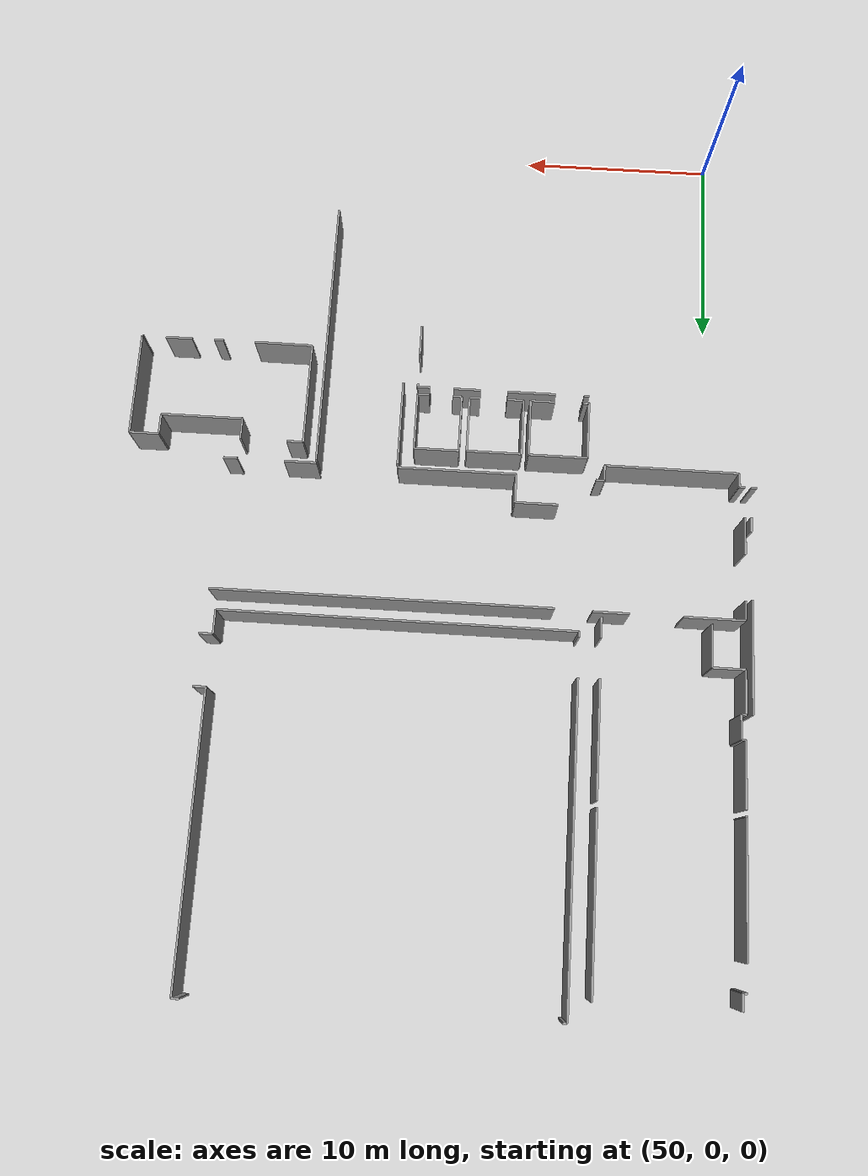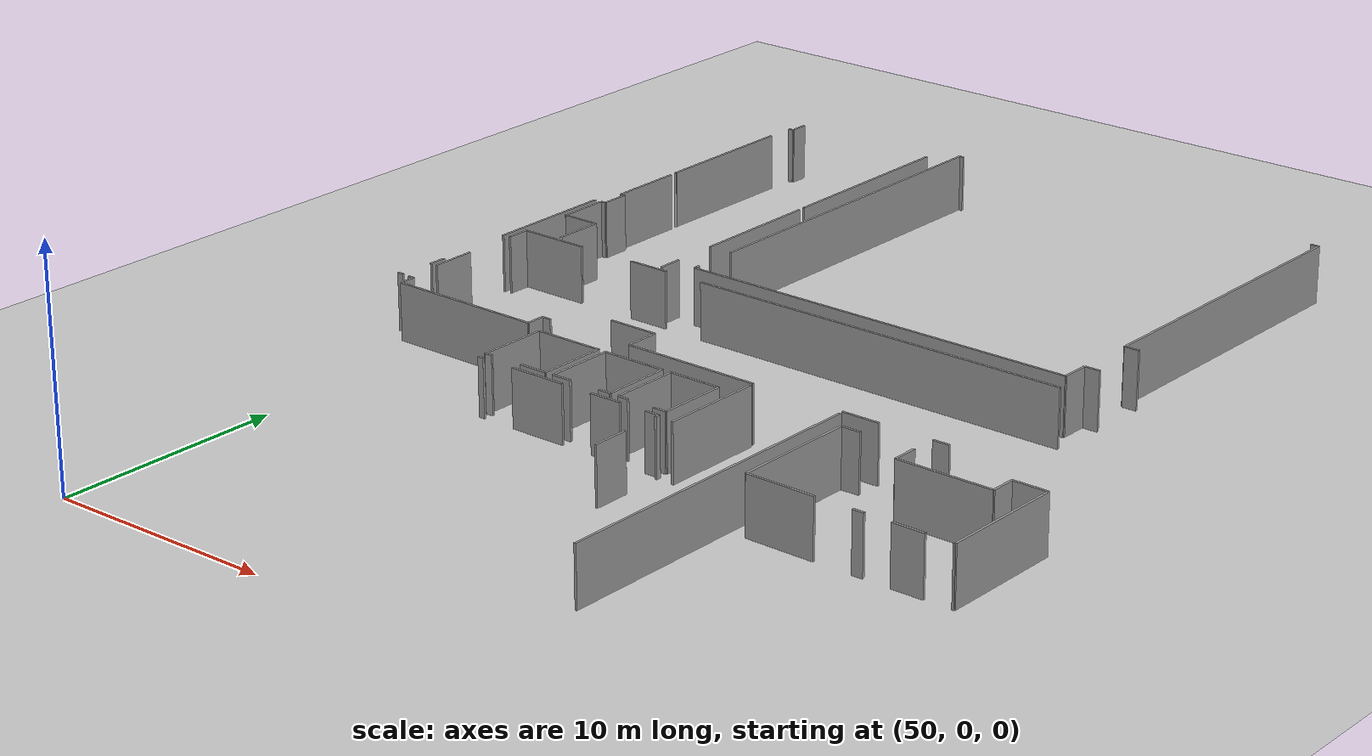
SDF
<sdf version="1.6">
 <world name="default">
  <model name="ground_plane">
   <static>1</static>
   <link name="link">
    <collision name="collision">
     <geometry><plane><normal>0 0 1</normal><size>100 100</size></plane></geometry>
     <surface><friction><ode><mu>100</mu><mu2>50</mu2></ode></friction></surface>
    </collision>
    <visual name="visual">
     <cast_shadows>0</cast_shadows>
     <geometry><plane><normal>0 0 1</normal><size>100 100</size></plane></geometry>
     <material>
      <script><uri>file://media/materials/scripts/gazebo.material</uri><name>Gazebo/Grey</name></script>
     </material>
    </visual>
   </link>
  </model>
  <model name="0510035737_A_40_1_105">
   <static>1</static>
   <link name="Wall_375">
    <collision name="Wall_375_Collision">
     <geometry><box><size>5.75361443869 0.1 2.5</size></box></geometry>
     <pose>2.87680721934 0 1.25 0 0 0</pose>
    </collision>
    <visual name="Wall_375_Visual">
     <pose>2.87680721934 0 1.25 0 0 0</pose>
     <geometry><box><size>5.75361443869 0.1 2.5</size></box></geometry>
     <material>
      <script><uri>file://media/materials/scripts/gazebo.material</uri><name>Gazebo/Grey</name></script>
      <ambient>1 1 1 1</ambient>
     </material>
    </visual>
    <pose>128.141082266 -14.6069714976 0 0 0 -1.57079632679</pose>
   </link>
   <link name="Wall_387">
    <collision name="Wall_387_Collision">
     <geometry><box><size>0.746592100664 0.1 2.5</size></box></geometry>
     <pose>0.373296050332 0 1.25 0 0 0</pose>
    </collision>
    <visual name="Wall_387_Visual">
     <pose>0.373296050332 0 1.25 0 0 0</pose>
     <geometry><box><size>0.746592100664 0.1 2.5</size></box></geometry>
     <material>
      <script><uri>file://media/materials/scripts/gazebo.material</uri><name>Gazebo/Grey</name></script>
      <ambient>1 1 1 1</ambient>
     </material>
    </visual>
    <pose>128.163452067 -23.9267897429 0 0 0 -1.57079632679</pose>
   </link>
   <link name="Wall_388">
    <collision name="Wall_388_Collision">
     <geometry><box><size>0.28623176893 0.1 2.5</size></box></geometry>
     <pose>0.143115884465 0 1.25 0 0 0</pose>
    </collision>
    <visual name="Wall_388_Visual">
     <pose>0.143115884465 0 1.25 0 0 0</pose>
     <geometry><box><size>0.28623176893 0.1 2.5</size></box></geometry>
     <material>
      <script><uri>file://media/materials/scripts/gazebo.material</uri><name>Gazebo/Grey</name></script>
      <ambient>1 1 1 1</ambient>
     </material>
    </visual>
    <pose>128.163452067 -26.2687553621 0 0 0 3.14159265359</pose>
   </link>
   <link name="Wall_400">
    <collision name="Wall_400_Collision">
     <geometry><box><size>0.71634202917 0.1 2.5</size></box></geometry>
     <pose>0.358171014585 0 1.25 0 0 0</pose>
    </collision>
    <visual name="Wall_400_Visual">
     <pose>0.358171014585 0 1.25 0 0 0</pose>
     <geometry><box><size>0.71634202917 0.1 2.5</size></box></geometry>
     <material>
      <script><uri>file://media/materials/scripts/gazebo.material</uri><name>Gazebo/Grey</name></script>
      <ambient>1 1 1 1</ambient>
     </material>
    </visual>
    <pose>128.758031203 -27.0168726764 0 0 0 1.57079632679</pose>
   </link>
   <link name="Wall_401">
    <collision name="Wall_401_Collision">
     <geometry><box><size>0.281656127864 0.1 2.5</size></box></geometry>
     <pose>0.140828063932 0 1.25 0 0 0</pose>
    </collision>
    <visual name="Wall_401_Visual">
     <pose>0.140828063932 0 1.25 0 0 0</pose>
     <geometry><box><size>0.281656127864 0.1 2.5</size></box></geometry>
     <material>
      <script><uri>file://media/materials/scripts/gazebo.material</uri><name>Gazebo/Grey</name></script>
      <ambient>1 1 1 1</ambient>
     </material>
    </visual>
    <pose>128.758031203 -26.3005306473 0 0 0 3.14159265359</pose>
   </link>
   <link name="Wall_402">
    <collision name="Wall_402_Collision">
     <geometry><box><size>1.9530361285 0.1 2.5</size></box></geometry>
     <pose>0.97651806425 0 1.25 0 0 0</pose>
    </collision>
    <visual name="Wall_402_Visual">
     <pose>0.97651806425 0 1.25 0 0 0</pose>
     <geometry><box><size>1.9530361285 0.1 2.5</size></box></geometry>
     <material>
      <script><uri>file://media/materials/scripts/gazebo.material</uri><name>Gazebo/Grey</name></script>
      <ambient>1 1 1 1</ambient>
     </material>
    </visual>
    <pose>128.476375075 -24.6817705189 0 0 0 1.57079632679</pose>
   </link>
   <link name="Wall_403">
    <collision name="Wall_403_Collision">
     <geometry><box><size>1.01121667567 0.1 2.5</size></box></geometry>
     <pose>0.505608337835 0 1.25 0 0 0</pose>
    </collision>
    <visual name="Wall_403_Visual">
     <pose>0.505608337835 0 1.25 0 0 0</pose>
     <geometry><box><size>1.01121667567 0.1 2.5</size></box></geometry>
     <material>
      <script><uri>file://media/materials/scripts/gazebo.material</uri><name>Gazebo/Grey</name></script>
      <ambient>1 1 1 1</ambient>
     </material>
    </visual>
    <pose>128.476375075 -20.3183883575 0 0 0 1.57079632679</pose>
   </link>
   <link name="Wall_404">
    <collision name="Wall_404_Collision">
     <geometry><box><size>3.09415017 0.1 2.5</size></box></geometry>
     <pose>1.547075085 0 1.25 0 0 0</pose>
    </collision>
    <visual name="Wall_404_Visual">
     <pose>1.547075085 0 1.25 0 0 0</pose>
     <geometry><box><size>3.09415017 0.1 2.5</size></box></geometry>
     <material>
      <script><uri>file://media/materials/scripts/gazebo.material</uri><name>Gazebo/Grey</name></script>
      <ambient>1 1 1 1</ambient>
     </material>
    </visual>
    <pose>128.476375075 -19.3071716819 0 0 0 0.0</pose>
   </link>
   <link name="Wall_405">
    <collision name="Wall_405_Collision">
     <geometry><box><size>1.87194560071 0.1 2.5</size></box></geometry>
     <pose>0.935972800356 0 1.25 0 0 0</pose>
    </collision>
    <visual name="Wall_405_Visual">
     <pose>0.935972800356 0 1.25 0 0 0</pose>
     <geometry><box><size>1.87194560071 0.1 2.5</size></box></geometry>
     <material>
      <script><uri>file://media/materials/scripts/gazebo.material</uri><name>Gazebo/Grey</name></script>
      <ambient>1 1 1 1</ambient>
     </material>
    </visual>
    <pose>134.251342506 -19.3071716819 0 0 0 0.0</pose>
   </link>
   <link name="Wall_406">
    <collision name="Wall_406_Collision">
     <geometry><box><size>0.432652283054 0.1 2.5</size></box></geometry>
     <pose>0.216326141527 0 1.25 0 0 0</pose>
    </collision>
    <visual name="Wall_406_Visual">
     <pose>0.216326141527 0 1.25 0 0 0</pose>
     <geometry><box><size>0.432652283054 0.1 2.5</size></box></geometry>
     <material>
      <script><uri>file://media/materials/scripts/gazebo.material</uri><name>Gazebo/Grey</name></script>
      <ambient>1 1 1 1</ambient>
     </material>
    </visual>
    <pose>136.123288107 -26.2204569286 0 0 0 3.14159265359</pose>
   </link>
   <link name="Wall_407">
    <collision name="Wall_407_Collision">
     <geometry><box><size>0.821327571415 0.1 2.5</size></box></geometry>
     <pose>0.410663785707 0 1.25 0 0 0</pose>
    </collision>
    <visual name="Wall_407_Visual">
     <pose>0.410663785707 0 1.25 0 0 0</pose>
     <geometry><box><size>0.821327571415 0.1 2.5</size></box></geometry>
     <material>
      <script><uri>file://media/materials/scripts/gazebo.material</uri><name>Gazebo/Grey</name></script>
      <ambient>1 1 1 1</ambient>
     </material>
    </visual>
    <pose>135.690635823 -26.2204569286 0 0 0 -1.57079632679</pose>
   </link>
   <link name="Wall_408">
    <collision name="Wall_408_Collision">
     <geometry><box><size>6.93264937942 0.1 2.5</size></box></geometry>
     <pose>3.46632468971 0 1.25 0 0 0</pose>
    </collision>
    <visual name="Wall_408_Visual">
     <pose>3.46632468971 0 1.25 0 0 0</pose>
     <geometry><box><size>6.93264937942 0.1 2.5</size></box></geometry>
     <material>
      <script><uri>file://media/materials/scripts/gazebo.material</uri><name>Gazebo/Grey</name></script>
      <ambient>1 1 1 1</ambient>
     </material>
    </visual>
    <pose>135.690635823 -27.0417845 0 0 0 3.1379992399</pose>
   </link>
   <link name="Wall_409">
    <collision name="Wall_409_Collision">
     <geometry><box><size>2.17597152934 0.1 2.5</size></box></geometry>
     <pose>1.08798576467 0 1.25 0 0 0</pose>
    </collision>
    <visual name="Wall_409_Visual">
     <pose>1.08798576467 0 1.25 0 0 0</pose>
     <geometry><box><size>2.17597152934 0.1 2.5</size></box></geometry>
     <material>
      <script><uri>file://media/materials/scripts/gazebo.material</uri><name>Gazebo/Grey</name></script>
      <ambient>1 1 1 1</ambient>
     </material>
    </visual>
    <pose>130.152330717 -19.0138222491 0 0 0 1.57079632679</pose>
   </link>
   <link name="Wall_410">
    <collision name="Wall_410_Collision">
     <geometry><box><size>1.67061739379 0.1 2.5</size></box></geometry>
     <pose>0.835308696896 0 1.25 0 0 0</pose>
    </collision>
    <visual name="Wall_410_Visual">
     <pose>0.835308696896 0 1.25 0 0 0</pose>
     <geometry><box><size>1.67061739379 0.1 2.5</size></box></geometry>
     <material>
      <script><uri>file://media/materials/scripts/gazebo.material</uri><name>Gazebo/Grey</name></script>
      <ambient>1 1 1 1</ambient>
     </material>
    </visual>
    <pose>130.152330717 -16.8378507197 0 0 0 3.14159265359</pose>
   </link>
   <link name="Wall_411">
    <collision name="Wall_411_Collision">
     <geometry><box><size>2.23087922214 0.1 2.5</size></box></geometry>
     <pose>1.11543961107 0 1.25 0 0 0</pose>
    </collision>
    <visual name="Wall_411_Visual">
     <pose>1.11543961107 0 1.25 0 0 0</pose>
     <geometry><box><size>2.23087922214 0.1 2.5</size></box></geometry>
     <material>
      <script><uri>file://media/materials/scripts/gazebo.material</uri><name>Gazebo/Grey</name></script>
      <ambient>1 1 1 1</ambient>
     </material>
    </visual>
    <pose>128.481713323 -16.8378507197 0 0 0 1.57079632679</pose>
   </link>
   <link name="Wall_412">
    <collision name="Wall_412_Collision">
     <geometry><box><size>0.241746369674 0.1 2.5</size></box></geometry>
     <pose>0.120873184837 0 1.25 0 0 0</pose>
    </collision>
    <visual name="Wall_412_Visual">
     <pose>0.120873184837 0 1.25 0 0 0</pose>
     <geometry><box><size>0.241746369674 0.1 2.5</size></box></geometry>
     <material>
      <script><uri>file://media/materials/scripts/gazebo.material</uri><name>Gazebo/Grey</name></script>
      <ambient>1 1 1 1</ambient>
     </material>
    </visual>
    <pose>128.481713323 -14.6069714976 0 0 0 0.0</pose>
   </link>
   <link name="Wall_413">
    <collision name="Wall_413_Collision">
     <geometry><box><size>1.21991674875 0.1 2.5</size></box></geometry>
     <pose>0.609958374376 0 1.25 0 0 0</pose>
    </collision>
    <visual name="Wall_413_Visual">
     <pose>0.609958374376 0 1.25 0 0 0</pose>
     <geometry><box><size>1.21991674875 0.1 2.5</size></box></geometry>
     <material>
      <script><uri>file://media/materials/scripts/gazebo.material</uri><name>Gazebo/Grey</name></script>
      <ambient>1 1 1 1</ambient>
     </material>
    </visual>
    <pose>128.723459693 -14.6069714976 0 0 0 1.57079632679</pose>
   </link>
   <link name="Wall_414">
    <collision name="Wall_414_Collision">
     <geometry><box><size>0.208700073083 0.1 2.5</size></box></geometry>
     <pose>0.104350036542 0 1.25 0 0 0</pose>
    </collision>
    <visual name="Wall_414_Visual">
     <pose>0.104350036542 0 1.25 0 0 0</pose>
     <geometry><box><size>0.208700073083 0.1 2.5</size></box></geometry>
     <material>
      <script><uri>file://media/materials/scripts/gazebo.material</uri><name>Gazebo/Grey</name></script>
      <ambient>1 1 1 1</ambient>
     </material>
    </visual>
    <pose>128.723459693 -13.3870547488 0 0 0 3.14159265359</pose>
   </link>
   <link name="Wall_415">
    <collision name="Wall_415_Collision">
     <geometry><box><size>3.3300498872 0.1 2.5</size></box></geometry>
     <pose>1.6650249436 0 1.25 0 0 0</pose>
    </collision>
    <visual name="Wall_415_Visual">
     <pose>1.6650249436 0 1.25 0 0 0</pose>
     <geometry><box><size>3.3300498872 0.1 2.5</size></box></geometry>
     <material>
      <script><uri>file://media/materials/scripts/gazebo.material</uri><name>Gazebo/Grey</name></script>
      <ambient>1 1 1 1</ambient>
     </material>
    </visual>
    <pose>128.51475962 -13.3870547488 0 0 0 1.57079632679</pose>
   </link>
   <link name="Wall_416">
    <collision name="Wall_416_Collision">
     <geometry><box><size>5.91427028058 0.1 2.5</size></box></geometry>
     <pose>2.95713514029 0 1.25 0 0 0</pose>
    </collision>
    <visual name="Wall_416_Visual">
     <pose>2.95713514029 0 1.25 0 0 0</pose>
     <geometry><box><size>5.91427028058 0.1 2.5</size></box></geometry>
     <material>
      <script><uri>file://media/materials/scripts/gazebo.material</uri><name>Gazebo/Grey</name></script>
      <ambient>1 1 1 1</ambient>
     </material>
    </visual>
    <pose>135.665215595 -10.0570048616 0 0 0 -1.57079632679</pose>
   </link>
   <link name="Wall_417">
    <collision name="Wall_417_Collision">
     <geometry><box><size>1.06612436847 0.1 2.5</size></box></geometry>
     <pose>0.533062184233 0 1.25 0 0 0</pose>
    </collision>
    <visual name="Wall_417_Visual">
     <pose>0.533062184233 0 1.25 0 0 0</pose>
     <geometry><box><size>1.06612436847 0.1 2.5</size></box></geometry>
     <material>
      <script><uri>file://media/materials/scripts/gazebo.material</uri><name>Gazebo/Grey</name></script>
      <ambient>1 1 1 1</ambient>
     </material>
    </visual>
    <pose>135.665215595 -17.9807441772 0 0 0 -1.57079632679</pose>
   </link>
   <link name="Wall_418">
    <collision name="Wall_418_Collision">
     <geometry><box><size>0.0424791712169 0.1 2.5</size></box></geometry>
     <pose>0.0212395856084 0 1.25 0 0 0</pose>
    </collision>
    <visual name="Wall_418_Visual">
     <pose>0.0212395856084 0 1.25 0 0 0</pose>
     <geometry><box><size>0.0424791712169 0.1 2.5</size></box></geometry>
     <material>
      <script><uri>file://media/materials/scripts/gazebo.material</uri><name>Gazebo/Grey</name></script>
      <ambient>1 1 1 1</ambient>
     </material>
    </visual>
    <pose>130.179021957 -19.0468685456 0 0 0 2.2502101322</pose>
   </link>
   <link name="Wall_419">
    <collision name="Wall_419_Collision">
     <geometry><box><size>6.6476438626 0.1 2.5</size></box></geometry>
     <pose>3.3238219313 0 1.25 0 0 0</pose>
    </collision>
    <visual name="Wall_419_Visual">
     <pose>3.3238219313 0 1.25 0 0 0</pose>
     <geometry><box><size>6.6476438626 0.1 2.5</size></box></geometry>
     <material>
      <script><uri>file://media/materials/scripts/gazebo.material</uri><name>Gazebo/Grey</name></script>
      <ambient>1 1 1 1</ambient>
     </material>
    </visual>
    <pose>128.499253281 -9.72730450256 0 0 0 1.57079632679</pose>
   </link>
   <link name="Wall_420">
    <collision name="Wall_420_Collision">
     <geometry><box><size>0.228019446475 0.1 2.5</size></box></geometry>
     <pose>0.114009723237 0 1.25 0 0 0</pose>
    </collision>
    <visual name="Wall_420_Visual">
     <pose>0.114009723237 0 1.25 0 0 0</pose>
     <geometry><box><size>0.228019446475 0.1 2.5</size></box></geometry>
     <material>
      <script><uri>file://media/materials/scripts/gazebo.material</uri><name>Gazebo/Grey</name></script>
      <ambient>1 1 1 1</ambient>
     </material>
    </visual>
    <pose>128.499253281 -1.77509453147 0 0 0 0.0</pose>
   </link>
   <link name="Wall_421">
    <collision name="Wall_421_Collision">
     <geometry><box><size>0.802770804868 0.1 2.5</size></box></geometry>
     <pose>0.401385402434 0 1.25 0 0 0</pose>
    </collision>
    <visual name="Wall_421_Visual">
     <pose>0.401385402434 0 1.25 0 0 0</pose>
     <geometry><box><size>0.802770804868 0.1 2.5</size></box></geometry>
     <material>
      <script><uri>file://media/materials/scripts/gazebo.material</uri><name>Gazebo/Grey</name></script>
      <ambient>1 1 1 1</ambient>
     </material>
    </visual>
    <pose>128.727272727 -1.77509453147 0 0 0 1.57079632679</pose>
   </link>
   <link name="Wall_422">
    <collision name="Wall_422_Collision">
     <geometry><box><size>8.80124559118 0.1 2.5</size></box></geometry>
     <pose>4.40062279559 0 1.25 0 0 0</pose>
    </collision>
    <visual name="Wall_422_Visual">
     <pose>4.40062279559 0 1.25 0 0 0</pose>
     <geometry><box><size>8.80124559118 0.1 2.5</size></box></geometry>
     <material>
      <script><uri>file://media/materials/scripts/gazebo.material</uri><name>Gazebo/Grey</name></script>
      <ambient>1 1 1 1</ambient>
     </material>
    </visual>
    <pose>135.658097931 -0.972323726605 0 0 0 -1.57079632679</pose>
   </link>
   <link name="Wall_423">
    <collision name="Wall_423_Collision">
     <geometry><box><size>0.0531598906707 0.1 2.5</size></box></geometry>
     <pose>0.0265799453354 0 1.25 0 0 0</pose>
    </collision>
    <visual name="Wall_423_Visual">
     <pose>0.0265799453354 0 1.25 0 0 0</pose>
     <geometry><box><size>0.0531598906707 0.1 2.5</size></box></geometry>
     <material>
      <script><uri>file://media/materials/scripts/gazebo.material</uri><name>Gazebo/Grey</name></script>
      <ambient>1 1 1 1</ambient>
     </material>
    </visual>
    <pose>128.525436116 -9.77356931778 0 0 0 2.08579062623</pose>
   </link>
   <link name="Wall_424">
    <collision name="Wall_424_Collision">
     <geometry><box><size>0.285214959804 0.1 2.5</size></box></geometry>
     <pose>0.142607479902 0 1.25 0 0 0</pose>
    </collision>
    <visual name="Wall_424_Visual">
     <pose>0.142607479902 0 1.25 0 0 0</pose>
     <geometry><box><size>0.285214959804 0.1 2.5</size></box></geometry>
     <material>
      <script><uri>file://media/materials/scripts/gazebo.material</uri><name>Gazebo/Grey</name></script>
      <ambient>1 1 1 1</ambient>
     </material>
    </visual>
    <pose>136.752184551 -18.2583330685 0 0 0 1.57079632679</pose>
   </link>
   <link name="Wall_425">
    <collision name="Wall_425_Collision">
     <geometry><box><size>15.9567856122 0.1 2.5</size></box></geometry>
     <pose>7.97839280608 0 1.25 0 0 0</pose>
    </collision>
    <visual name="Wall_425_Visual">
     <pose>7.97839280608 0 1.25 0 0 0</pose>
     <geometry><box><size>15.9567856122 0.1 2.5</size></box></geometry>
     <material>
      <script><uri>file://media/materials/scripts/gazebo.material</uri><name>Gazebo/Grey</name></script>
      <ambient>1 1 1 1</ambient>
     </material>
    </visual>
    <pose>136.752184551 -15.9567856122 0 0 0 1.57079632679</pose>
   </link>
   <link name="Wall_426">
    <collision name="Wall_426_Collision">
     <geometry><box><size>0.207429061676 0.1 2.5</size></box></geometry>
     <pose>0.103714530838 0 1.25 0 0 0</pose>
    </collision>
    <visual name="Wall_426_Visual">
     <pose>0.103714530838 0 1.25 0 0 0</pose>
     <geometry><box><size>0.207429061676 0.1 2.5</size></box></geometry>
     <material>
      <script><uri>file://media/materials/scripts/gazebo.material</uri><name>Gazebo/Grey</name></script>
      <ambient>1 1 1 1</ambient>
     </material>
    </visual>
    <pose>136.752184551 -0.0 0 0 0 0.0</pose>
   </link>
   <link name="Wall_427">
    <collision name="Wall_427_Collision">
     <geometry><box><size>0.366559689873 0.1 2.5</size></box></geometry>
     <pose>0.183279844937 0 1.25 0 0 0</pose>
    </collision>
    <visual name="Wall_427_Visual">
     <pose>0.183279844937 0 1.25 0 0 0</pose>
     <geometry><box><size>0.366559689873 0.1 2.5</size></box></geometry>
     <material>
      <script><uri>file://media/materials/scripts/gazebo.material</uri><name>Gazebo/Grey</name></script>
      <ambient>1 1 1 1</ambient>
     </material>
    </visual>
    <pose>154.610149026 -0.0 0 0 0 0.0</pose>
   </link>
   <link name="Wall_428">
    <collision name="Wall_428_Collision">
     <geometry><box><size>14.3908995583 0.1 2.5</size></box></geometry>
     <pose>7.19544977916 0 1.25 0 0 0</pose>
    </collision>
    <visual name="Wall_428_Visual">
     <pose>7.19544977916 0 1.25 0 0 0</pose>
     <geometry><box><size>14.3908995583 0.1 2.5</size></box></geometry>
     <material>
      <script><uri>file://media/materials/scripts/gazebo.material</uri><name>Gazebo/Grey</name></script>
      <ambient>1 1 1 1</ambient>
     </material>
    </visual>
    <pose>154.976708716 -0.0 0 0 0 -1.57079632679</pose>
   </link>
   <link name="Wall_429">
    <collision name="Wall_429_Collision">
     <geometry><box><size>0.644402783515 0.1 2.5</size></box></geometry>
     <pose>0.322201391757 0 1.25 0 0 0</pose>
    </collision>
    <visual name="Wall_429_Visual">
     <pose>0.322201391757 0 1.25 0 0 0</pose>
     <geometry><box><size>0.644402783515 0.1 2.5</size></box></geometry>
     <material>
      <script><uri>file://media/materials/scripts/gazebo.material</uri><name>Gazebo/Grey</name></script>
      <ambient>1 1 1 1</ambient>
     </material>
    </visual>
    <pose>154.976708716 -14.3908995583 0 0 0 0.0</pose>
   </link>
   <link name="Wall_430">
    <collision name="Wall_430_Collision">
     <geometry><box><size>0.7076991516 0.1 2.5</size></box></geometry>
     <pose>0.3538495758 0 1.25 0 0 0</pose>
    </collision>
    <visual name="Wall_430_Visual">
     <pose>0.3538495758 0 1.25 0 0 0</pose>
     <geometry><box><size>0.7076991516 0.1 2.5</size></box></geometry>
     <material>
      <script><uri>file://media/materials/scripts/gazebo.material</uri><name>Gazebo/Grey</name></script>
      <ambient>1 1 1 1</ambient>
     </material>
    </visual>
    <pose>155.621111499 -17.0450255791 0 0 0 3.14159265359</pose>
   </link>
   <link name="Wall_431">
    <collision name="Wall_431_Collision">
     <geometry><box><size>1.25118362937 0.1 2.5</size></box></geometry>
     <pose>0.625591814687 0 1.25 0 0 0</pose>
    </collision>
    <visual name="Wall_431_Visual">
     <pose>0.625591814687 0 1.25 0 0 0</pose>
     <geometry><box><size>1.25118362937 0.1 2.5</size></box></geometry>
     <material>
      <script><uri>file://media/materials/scripts/gazebo.material</uri><name>Gazebo/Grey</name></script>
      <ambient>1 1 1 1</ambient>
     </material>
    </visual>
    <pose>154.913412348 -17.0450255791 0 0 0 -1.57079632679</pose>
   </link>
   <link name="Wall_432">
    <collision name="Wall_432_Collision">
     <geometry><box><size>18.1612672933 0.1 2.5</size></box></geometry>
     <pose>9.08063364663 0 1.25 0 0 0</pose>
    </collision>
    <visual name="Wall_432_Visual">
     <pose>9.08063364663 0 1.25 0 0 0</pose>
     <geometry><box><size>18.1612672933 0.1 2.5</size></box></geometry>
     <material>
      <script><uri>file://media/materials/scripts/gazebo.material</uri><name>Gazebo/Grey</name></script>
      <ambient>1 1 1 1</ambient>
     </material>
    </visual>
    <pose>154.913412348 -18.2962092085 0 0 0 3.13950710709</pose>
   </link>
   <link name="Wall_433">
    <collision name="Wall_433_Collision">
     <geometry><box><size>1.51657081122 0.1 2.5</size></box></geometry>
     <pose>0.758285405612 0 1.25 0 0 0</pose>
    </collision>
    <visual name="Wall_433_Visual">
     <pose>0.758285405612 0 1.25 0 0 0</pose>
     <geometry><box><size>1.51657081122 0.1 2.5</size></box></geometry>
     <material>
      <script><uri>file://media/materials/scripts/gazebo.material</uri><name>Gazebo/Grey</name></script>
      <ambient>1 1 1 1</ambient>
     </material>
    </visual>
    <pose>140.240348257 -26.2962092085 0 0 0 1.57079632679</pose>
   </link>
   <link name="Wall_434">
    <collision name="Wall_434_Collision">
     <geometry><box><size>2.22426996282 0.1 2.5</size></box></geometry>
     <pose>1.11213498141 0 1.25 0 0 0</pose>
    </collision>
    <visual name="Wall_434_Visual">
     <pose>1.11213498141 0 1.25 0 0 0</pose>
     <geometry><box><size>2.22426996282 0.1 2.5</size></box></geometry>
     <material>
      <script><uri>file://media/materials/scripts/gazebo.material</uri><name>Gazebo/Grey</name></script>
      <ambient>1 1 1 1</ambient>
     </material>
    </visual>
    <pose>140.240348257 -24.7796383973 0 0 0 3.14159265359</pose>
   </link>
   <link name="Wall_435">
    <collision name="Wall_435_Collision">
     <geometry><box><size>17.3795557815 0.1 2.5</size></box></geometry>
     <pose>8.68977789076 0 1.25 0 0 0</pose>
    </collision>
    <visual name="Wall_435_Visual">
     <pose>8.68977789076 0 1.25 0 0 0</pose>
     <geometry><box><size>17.3795557815 0.1 2.5</size></box></geometry>
     <material>
      <script><uri>file://media/materials/scripts/gazebo.material</uri><name>Gazebo/Grey</name></script>
      <ambient>1 1 1 1</ambient>
     </material>
    </visual>
    <pose>138.016078294 -19.3549617108 0 0 0 0.0</pose>
   </link>
   <link name="Wall_436">
    <collision name="Wall_436_Collision">
     <geometry><box><size>0.735915604843 0.1 2.5</size></box></geometry>
     <pose>0.367957802421 0 1.25 0 0 0</pose>
    </collision>
    <visual name="Wall_436_Visual">
     <pose>0.367957802421 0 1.25 0 0 0</pose>
     <geometry><box><size>0.735915604843 0.1 2.5</size></box></geometry>
     <material>
      <script><uri>file://media/materials/scripts/gazebo.material</uri><name>Gazebo/Grey</name></script>
      <ambient>1 1 1 1</ambient>
     </material>
    </visual>
    <pose>155.395634076 -26.3000222427 0 0 0 3.14159265359</pose>
   </link>
   <link name="Wall_437">
    <collision name="Wall_437_Collision">
     <geometry><box><size>1.69146198087 0.1 2.5</size></box></geometry>
     <pose>0.845730990436 0 1.25 0 0 0</pose>
    </collision>
    <visual name="Wall_437_Visual">
     <pose>0.845730990436 0 1.25 0 0 0</pose>
     <geometry><box><size>1.69146198087 0.1 2.5</size></box></geometry>
     <material>
      <script><uri>file://media/materials/scripts/gazebo.material</uri><name>Gazebo/Grey</name></script>
      <ambient>1 1 1 1</ambient>
     </material>
    </visual>
    <pose>152.240475358 -26.3000222427 0 0 0 3.14159265359</pose>
   </link>
   <link name="Wall_438">
    <collision name="Wall_438_Collision">
     <geometry><box><size>6.11839590075 0.1 2.5</size></box></geometry>
     <pose>3.05919795037 0 1.25 0 0 0</pose>
    </collision>
    <visual name="Wall_438_Visual">
     <pose>3.05919795037 0 1.25 0 0 0</pose>
     <geometry><box><size>6.11839590075 0.1 2.5</size></box></geometry>
     <material>
      <script><uri>file://media/materials/scripts/gazebo.material</uri><name>Gazebo/Grey</name></script>
      <ambient>1 1 1 1</ambient>
     </material>
    </visual>
    <pose>146.35874297 -26.3000222427 0 0 0 3.14096944539</pose>
   </link>
   <link name="Wall_447">
    <collision name="Wall_447_Collision">
     <geometry><box><size>4.49963458422 0.1 2.5</size></box></geometry>
     <pose>2.24981729211 0 1.25 0 0 0</pose>
    </collision>
    <visual name="Wall_447_Visual">
     <pose>2.24981729211 0 1.25 0 0 0</pose>
     <geometry><box><size>4.49963458422 0.1 2.5</size></box></geometry>
     <material>
      <script><uri>file://media/materials/scripts/gazebo.material</uri><name>Gazebo/Grey</name></script>
      <ambient>1 1 1 1</ambient>
     </material>
    </visual>
    <pose>146.378062343 -30.983953481 0 0 0 1.57079632679</pose>
   </link>
   <link name="Wall_448">
    <collision name="Wall_448_Collision">
     <geometry><box><size>14.4745321089 0.1 2.5</size></box></geometry>
     <pose>7.23726605446 0 1.25 0 0 0</pose>
    </collision>
    <visual name="Wall_448_Visual">
     <pose>7.23726605446 0 1.25 0 0 0</pose>
     <geometry><box><size>14.4745321089 0.1 2.5</size></box></geometry>
     <material>
      <script><uri>file://media/materials/scripts/gazebo.material</uri><name>Gazebo/Grey</name></script>
      <ambient>1 1 1 1</ambient>
     </material>
    </visual>
    <pose>150.591210956 -26.4843188968 0 0 0 -1.57079632679</pose>
   </link>
   <link name="Wall_458">
    <collision name="Wall_458_Collision">
     <geometry><box><size>0.263861968161 0.1 2.5</size></box></geometry>
     <pose>0.131930984081 0 1.25 0 0 0</pose>
    </collision>
    <visual name="Wall_458_Visual">
     <pose>0.131930984081 0 1.25 0 0 0</pose>
     <geometry><box><size>0.263861968161 0.1 2.5</size></box></geometry>
     <material>
      <script><uri>file://media/materials/scripts/gazebo.material</uri><name>Gazebo/Grey</name></script>
      <ambient>1 1 1 1</ambient>
     </material>
    </visual>
    <pose>136.603222014 -30.8169425821 0 0 0 0.0</pose>
   </link>
   <link name="Wall_459">
    <collision name="Wall_459_Collision">
     <geometry><box><size>2.52346604811 0.1 2.5</size></box></geometry>
     <pose>1.26173302405 0 1.25 0 0 0</pose>
    </collision>
    <visual name="Wall_459_Visual">
     <pose>1.26173302405 0 1.25 0 0 0</pose>
     <geometry><box><size>2.52346604811 0.1 2.5</size></box></geometry>
     <material>
      <script><uri>file://media/materials/scripts/gazebo.material</uri><name>Gazebo/Grey</name></script>
      <ambient>1 1 1 1</ambient>
     </material>
    </visual>
    <pose>138.350608497 -30.8169425821 0 0 0 0.0</pose>
   </link>
   <link name="Wall_460">
    <collision name="Wall_460_Collision">
     <geometry><box><size>1.42404118077 0.1 2.5</size></box></geometry>
     <pose>0.712020590385 0 1.25 0 0 0</pose>
    </collision>
    <visual name="Wall_460_Visual">
     <pose>0.712020590385 0 1.25 0 0 0</pose>
     <geometry><box><size>1.42404118077 0.1 2.5</size></box></geometry>
     <material>
      <script><uri>file://media/materials/scripts/gazebo.material</uri><name>Gazebo/Grey</name></script>
      <ambient>1 1 1 1</ambient>
     </material>
    </visual>
    <pose>142.297353119 -30.8169425821 0 0 0 0.0</pose>
   </link>
   <link name="Wall_461">
    <collision name="Wall_461_Collision">
     <geometry><box><size>0.656604493025 0.1 2.5</size></box></geometry>
     <pose>0.328302246513 0 1.25 0 0 0</pose>
    </collision>
    <visual name="Wall_461_Visual">
     <pose>0.328302246513 0 1.25 0 0 0</pose>
     <geometry><box><size>0.656604493025 0.1 2.5</size></box></geometry>
     <material>
      <script><uri>file://media/materials/scripts/gazebo.material</uri><name>Gazebo/Grey</name></script>
      <ambient>1 1 1 1</ambient>
     </material>
    </visual>
    <pose>144.954021162 -30.8169425821 0 0 0 0.0</pose>
   </link>
   <link name="Wall_462">
    <collision name="Wall_462_Collision">
     <geometry><box><size>0.197006768136 0.1 2.5</size></box></geometry>
     <pose>0.0985033840679 0 1.25 0 0 0</pose>
    </collision>
    <visual name="Wall_462_Visual">
     <pose>0.0985033840679 0 1.25 0 0 0</pose>
     <geometry><box><size>0.197006768136 0.1 2.5</size></box></geometry>
     <material>
      <script><uri>file://media/materials/scripts/gazebo.material</uri><name>Gazebo/Grey</name></script>
      <ambient>1 1 1 1</ambient>
     </material>
    </visual>
    <pose>145.610625655 -30.8169425821 0 0 0 -1.57079632679</pose>
   </link>
   <link name="Wall_463">
    <collision name="Wall_463_Collision">
     <geometry><box><size>1.60452480061 0.1 2.5</size></box></geometry>
     <pose>0.802262400305 0 1.25 0 0 0</pose>
    </collision>
    <visual name="Wall_463_Visual">
     <pose>0.802262400305 0 1.25 0 0 0</pose>
     <geometry><box><size>1.60452480061 0.1 2.5</size></box></geometry>
     <material>
      <script><uri>file://media/materials/scripts/gazebo.material</uri><name>Gazebo/Grey</name></script>
      <ambient>1 1 1 1</ambient>
     </material>
    </visual>
    <pose>145.610625655 -32.6962600489 0 0 0 -1.57079632679</pose>
   </link>
   <link name="Wall_465">
    <collision name="Wall_465_Collision">
     <geometry><box><size>3.03339582473 0.1 2.5</size></box></geometry>
     <pose>1.51669791236 0 1.25 0 0 0</pose>
    </collision>
    <visual name="Wall_465_Visual">
     <pose>1.51669791236 0 1.25 0 0 0</pose>
     <geometry><box><size>3.03339582473 0.1 2.5</size></box></geometry>
     <material>
      <script><uri>file://media/materials/scripts/gazebo.material</uri><name>Gazebo/Grey</name></script>
      <ambient>1 1 1 1</ambient>
     </material>
    </visual>
    <pose>136.600425789 -30.4290299005 0 0 0 1.57079632679</pose>
   </link>
   <link name="Wall_466">
    <collision name="Wall_466_Collision">
     <geometry><box><size>3.04585173652 0.1 2.5</size></box></geometry>
     <pose>1.52292586826 0 1.25 0 0 0</pose>
    </collision>
    <visual name="Wall_466_Visual">
     <pose>1.52292586826 0 1.25 0 0 0</pose>
     <geometry><box><size>3.04585173652 0.1 2.5</size></box></geometry>
     <material>
      <script><uri>file://media/materials/scripts/gazebo.material</uri><name>Gazebo/Grey</name></script>
      <ambient>1 1 1 1</ambient>
     </material>
    </visual>
    <pose>136.600425789 -27.3956340758 0 0 0 0.0</pose>
   </link>
   <link name="Wall_467">
    <collision name="Wall_467_Collision">
     <geometry><box><size>2.99551968479 0.1 2.5</size></box></geometry>
     <pose>1.49775984239 0 1.25 0 0 0</pose>
    </collision>
    <visual name="Wall_467_Visual">
     <pose>1.49775984239 0 1.25 0 0 0</pose>
     <geometry><box><size>2.99551968479 0.1 2.5</size></box></geometry>
     <material>
      <script><uri>file://media/materials/scripts/gazebo.material</uri><name>Gazebo/Grey</name></script>
      <ambient>1 1 1 1</ambient>
     </material>
    </visual>
    <pose>139.646277525 -27.3956340758 0 0 0 -1.57079632679</pose>
   </link>
   <link name="Wall_468">
    <collision name="Wall_468_Collision">
     <geometry><box><size>1.26363954116 0.1 2.5</size></box></geometry>
     <pose>0.631819770582 0 1.25 0 0 0</pose>
    </collision>
    <visual name="Wall_468_Visual">
     <pose>0.631819770582 0 1.25 0 0 0</pose>
     <geometry><box><size>1.26363954116 0.1 2.5</size></box></geometry>
     <material>
      <script><uri>file://media/materials/scripts/gazebo.material</uri><name>Gazebo/Grey</name></script>
      <ambient>1 1 1 1</ambient>
     </material>
    </visual>
    <pose>139.646277525 -30.3911537606 0 0 0 3.14159265359</pose>
   </link>
   <link name="Wall_469">
    <collision name="Wall_469_Collision">
     <geometry><box><size>0.305871687794 0.1 2.5</size></box></geometry>
     <pose>0.152935843897 0 1.25 0 0 0</pose>
    </collision>
    <visual name="Wall_469_Visual">
     <pose>0.152935843897 0 1.25 0 0 0</pose>
     <geometry><box><size>0.305871687794 0.1 2.5</size></box></geometry>
     <material>
      <script><uri>file://media/materials/scripts/gazebo.material</uri><name>Gazebo/Grey</name></script>
      <ambient>1 1 1 1</ambient>
     </material>
    </visual>
    <pose>136.903943313 -30.3911537606 0 0 0 -3.01744382335</pose>
   </link>
   <link name="Wall_470">
    <collision name="Wall_470_Collision">
     <geometry><box><size>2.97492929999 0.1 2.5</size></box></geometry>
     <pose>1.48746465 0 1.25 0 0 0</pose>
    </collision>
    <visual name="Wall_470_Visual">
     <pose>1.48746465 0 1.25 0 0 0</pose>
     <geometry><box><size>2.97492929999 0.1 2.5</size></box></geometry>
     <material>
      <script><uri>file://media/materials/scripts/gazebo.material</uri><name>Gazebo/Grey</name></script>
      <ambient>1 1 1 1</ambient>
     </material>
    </visual>
    <pose>140.017921261 -30.3822566808 0 0 0 1.57079632679</pose>
   </link>
   <link name="Wall_471">
    <collision name="Wall_471_Collision">
     <geometry><box><size>2.84198150678 0.1 2.5</size></box></geometry>
     <pose>1.42099075339 0 1.25 0 0 0</pose>
    </collision>
    <visual name="Wall_471_Visual">
     <pose>1.42099075339 0 1.25 0 0 0</pose>
     <geometry><box><size>2.84198150678 0.1 2.5</size></box></geometry>
     <material>
      <script><uri>file://media/materials/scripts/gazebo.material</uri><name>Gazebo/Grey</name></script>
      <ambient>1 1 1 1</ambient>
     </material>
    </visual>
    <pose>140.017921261 -27.4073273808 0 0 0 0.0</pose>
   </link>
   <link name="Wall_472">
    <collision name="Wall_472_Collision">
     <geometry><box><size>2.9665406247 0.1 2.5</size></box></geometry>
     <pose>1.48327031235 0 1.25 0 0 0</pose>
    </collision>
    <visual name="Wall_472_Visual">
     <pose>1.48327031235 0 1.25 0 0 0</pose>
     <geometry><box><size>2.9665406247 0.1 2.5</size></box></geometry>
     <material>
      <script><uri>file://media/materials/scripts/gazebo.material</uri><name>Gazebo/Grey</name></script>
      <ambient>1 1 1 1</ambient>
     </material>
    </visual>
    <pose>142.859902768 -27.4073273808 0 0 0 -1.57079632679</pose>
   </link>
   <link name="Wall_473">
    <collision name="Wall_473_Collision">
     <geometry><box><size>0.556702996409 0.1 2.5</size></box></geometry>
     <pose>0.278351498205 0 1.25 0 0 0</pose>
    </collision>
    <visual name="Wall_473_Visual">
     <pose>0.278351498205 0 1.25 0 0 0</pose>
     <geometry><box><size>0.556702996409 0.1 2.5</size></box></geometry>
     <material>
      <script><uri>file://media/materials/scripts/gazebo.material</uri><name>Gazebo/Grey</name></script>
      <ambient>1 1 1 1</ambient>
     </material>
    </visual>
    <pose>142.859902768 -30.3738680055 0 0 0 3.14159265359</pose>
   </link>
   <link name="Wall_474">
    <collision name="Wall_474_Collision">
     <geometry><box><size>0.86509103673 0.1 2.5</size></box></geometry>
     <pose>0.432545518365 0 1.25 0 0 0</pose>
    </collision>
    <visual name="Wall_474_Visual">
     <pose>0.432545518365 0 1.25 0 0 0</pose>
     <geometry><box><size>0.86509103673 0.1 2.5</size></box></geometry>
     <material>
      <script><uri>file://media/materials/scripts/gazebo.material</uri><name>Gazebo/Grey</name></script>
      <ambient>1 1 1 1</ambient>
     </material>
    </visual>
    <pose>140.882971625 -30.3738680055 0 0 0 -3.13189563166</pose>
   </link>
   <link name="Wall_475">
    <collision name="Wall_475_Collision">
     <geometry><box><size>2.99729910076 0.1 2.5</size></box></geometry>
     <pose>1.49864955038 0 1.25 0 0 0</pose>
    </collision>
    <visual name="Wall_475_Visual">
     <pose>1.49864955038 0 1.25 0 0 0</pose>
     <geometry><box><size>2.99729910076 0.1 2.5</size></box></geometry>
     <material>
      <script><uri>file://media/materials/scripts/gazebo.material</uri><name>Gazebo/Grey</name></script>
      <ambient>1 1 1 1</ambient>
     </material>
    </visual>
    <pose>143.27018525 -30.3936957834 0 0 0 1.57079632679</pose>
   </link>
   <link name="Wall_476">
    <collision name="Wall_476_Collision">
     <geometry><box><size>2.31857900925 0.1 2.5</size></box></geometry>
     <pose>1.15928950462 0 1.25 0 0 0</pose>
    </collision>
    <visual name="Wall_476_Visual">
     <pose>1.15928950462 0 1.25 0 0 0</pose>
     <geometry><box><size>2.31857900925 0.1 2.5</size></box></geometry>
     <material>
      <script><uri>file://media/materials/scripts/gazebo.material</uri><name>Gazebo/Grey</name></script>
      <ambient>1 1 1 1</ambient>
     </material>
    </visual>
    <pose>143.27018525 -27.3963966827 0 0 0 0.0</pose>
   </link>
   <link name="Wall_477">
    <collision name="Wall_477_Collision">
     <geometry><box><size>3.00263734867 0.1 2.5</size></box></geometry>
     <pose>1.50131867434 0 1.25 0 0 0</pose>
    </collision>
    <visual name="Wall_477_Visual">
     <pose>1.50131867434 0 1.25 0 0 0</pose>
     <geometry><box><size>3.00263734867 0.1 2.5</size></box></geometry>
     <material>
      <script><uri>file://media/materials/scripts/gazebo.material</uri><name>Gazebo/Grey</name></script>
      <ambient>1 1 1 1</ambient>
     </material>
    </visual>
    <pose>145.588764259 -27.3963966827 0 0 0 -1.57079632679</pose>
   </link>
   <link name="Wall_478">
    <collision name="Wall_478_Collision">
     <geometry><box><size>0.617965746243 0.1 2.5</size></box></geometry>
     <pose>0.308982873121 0 1.25 0 0 0</pose>
    </collision>
    <visual name="Wall_478_Visual">
     <pose>0.308982873121 0 1.25 0 0 0</pose>
     <geometry><box><size>0.617965746243 0.1 2.5</size></box></geometry>
     <material>
      <script><uri>file://media/materials/scripts/gazebo.material</uri><name>Gazebo/Grey</name></script>
      <ambient>1 1 1 1</ambient>
     </material>
    </visual>
    <pose>145.588764259 -30.3990340313 0 0 0 3.14159265359</pose>
   </link>
   <link name="Wall_479">
    <collision name="Wall_479_Collision">
     <geometry><box><size>0.48758919896 0.1 2.5</size></box></geometry>
     <pose>0.24379459948 0 1.25 0 0 0</pose>
    </collision>
    <visual name="Wall_479_Visual">
     <pose>0.24379459948 0 1.25 0 0 0</pose>
     <geometry><box><size>0.48758919896 0.1 2.5</size></box></geometry>
     <material>
      <script><uri>file://media/materials/scripts/gazebo.material</uri><name>Gazebo/Grey</name></script>
      <ambient>1 1 1 1</ambient>
     </material>
    </visual>
    <pose>143.757745226 -30.3990340313 0 0 0 3.13064418596</pose>
   </link>
   <link name="Wall_578">
    <collision name="Wall_578_Collision">
     <geometry><box><size>5.43408217089 0.1 2.5</size></box></geometry>
     <pose>2.71704108544 0 1.25 0 0 0</pose>
    </collision>
    <visual name="Wall_578_Visual">
     <pose>2.71704108544 0 1.25 0 0 0</pose>
     <geometry><box><size>5.43408217089 0.1 2.5</size></box></geometry>
     <material>
      <script><uri>file://media/materials/scripts/gazebo.material</uri><name>Gazebo/Grey</name></script>
      <ambient>1 1 1 1</ambient>
     </material>
    </visual>
    <pose>151.352038385 -32.8225985828 0 0 0 1.57079632679</pose>
   </link>
   <link name="Wall_579">
    <collision name="Wall_579_Collision">
     <geometry><box><size>0.859966318198 0.1 2.5</size></box></geometry>
     <pose>0.429983159099 0 1.25 0 0 0</pose>
    </collision>
    <visual name="Wall_579_Visual">
     <pose>0.429983159099 0 1.25 0 0 0</pose>
     <geometry><box><size>0.859966318198 0.1 2.5</size></box></geometry>
     <material>
      <script><uri>file://media/materials/scripts/gazebo.material</uri><name>Gazebo/Grey</name></script>
      <ambient>1 1 1 1</ambient>
     </material>
    </visual>
    <pose>151.352038385 -27.3885164119 0 0 0 0.0</pose>
   </link>
   <link name="Wall_580">
    <collision name="Wall_580_Collision">
     <geometry><box><size>1.10247529472 0.1 2.5</size></box></geometry>
     <pose>0.551237647358 0 1.25 0 0 0</pose>
    </collision>
    <visual name="Wall_580_Visual">
     <pose>0.551237647358 0 1.25 0 0 0</pose>
     <geometry><box><size>1.10247529472 0.1 2.5</size></box></geometry>
     <material>
      <script><uri>file://media/materials/scripts/gazebo.material</uri><name>Gazebo/Grey</name></script>
      <ambient>1 1 1 1</ambient>
     </material>
    </visual>
    <pose>154.625401163 -27.3885164119 0 0 0 -1.57079632679</pose>
   </link>
   <link name="Wall_581">
    <collision name="Wall_581_Collision">
     <geometry><box><size>4.25839661911 0.1 2.5</size></box></geometry>
     <pose>2.12919830955 0 1.25 0 0 0</pose>
    </collision>
    <visual name="Wall_581_Visual">
     <pose>2.12919830955 0 1.25 0 0 0</pose>
     <geometry><box><size>4.25839661911 0.1 2.5</size></box></geometry>
     <material>
      <script><uri>file://media/materials/scripts/gazebo.material</uri><name>Gazebo/Grey</name></script>
      <ambient>1 1 1 1</ambient>
     </material>
    </visual>
    <pose>154.625401163 -28.4909917067 0 0 0 0.0</pose>
   </link>
   <link name="Wall_582">
    <collision name="Wall_582_Collision">
     <geometry><box><size>1.09027358521 0.1 2.5</size></box></geometry>
     <pose>0.545136792603 0 1.25 0 0 0</pose>
    </collision>
    <visual name="Wall_582_Visual">
     <pose>0.545136792603 0 1.25 0 0 0</pose>
     <geometry><box><size>1.09027358521 0.1 2.5</size></box></geometry>
     <material>
      <script><uri>file://media/materials/scripts/gazebo.material</uri><name>Gazebo/Grey</name></script>
      <ambient>1 1 1 1</ambient>
     </material>
    </visual>
    <pose>158.883797782 -28.4909917067 0 0 0 1.57079632679</pose>
   </link>
   <link name="Wall_583">
    <collision name="Wall_583_Collision">
     <geometry><box><size>1.54554987131 0.1 2.5</size></box></geometry>
     <pose>0.772774935655 0 1.25 0 0 0</pose>
    </collision>
    <visual name="Wall_583_Visual">
     <pose>0.772774935655 0 1.25 0 0 0</pose>
     <geometry><box><size>1.54554987131 0.1 2.5</size></box></geometry>
     <material>
      <script><uri>file://media/materials/scripts/gazebo.material</uri><name>Gazebo/Grey</name></script>
      <ambient>1 1 1 1</ambient>
     </material>
    </visual>
    <pose>158.883797782 -27.4007181214 0 0 0 0.0</pose>
   </link>
   <link name="Wall_584">
    <collision name="Wall_584_Collision">
     <geometry><box><size>5.44933430778 0.1 2.5</size></box></geometry>
     <pose>2.72466715389 0 1.25 0 0 0</pose>
    </collision>
    <visual name="Wall_584_Visual">
     <pose>2.72466715389 0 1.25 0 0 0</pose>
     <geometry><box><size>5.44933430778 0.1 2.5</size></box></geometry>
     <material>
      <script><uri>file://media/materials/scripts/gazebo.material</uri><name>Gazebo/Grey</name></script>
      <ambient>1 1 1 1</ambient>
     </material>
    </visual>
    <pose>160.429347653 -27.4007181214 0 0 0 -1.57079632679</pose>
   </link>
   <link name="Wall_585">
    <collision name="Wall_585_Collision">
     <geometry><box><size>0.077023291284 0.1 2.5</size></box></geometry>
     <pose>0.038511645642 0 1.25 0 0 0</pose>
    </collision>
    <visual name="Wall_585_Visual">
     <pose>0.038511645642 0 1.25 0 0 0</pose>
     <geometry><box><size>0.077023291284 0.1 2.5</size></box></geometry>
     <material>
      <script><uri>file://media/materials/scripts/gazebo.material</uri><name>Gazebo/Grey</name></script>
      <ambient>1 1 1 1</ambient>
     </material>
    </visual>
    <pose>160.429347653 -32.8500524292 0 0 0 3.14159265359</pose>
   </link>
   <link name="Wall_586">
    <collision name="Wall_586_Collision">
     <geometry><box><size>1.41285628039 0.1 2.5</size></box></geometry>
     <pose>0.706428140193 0 1.25 0 0 0</pose>
    </collision>
    <visual name="Wall_586_Visual">
     <pose>0.706428140193 0 1.25 0 0 0</pose>
     <geometry><box><size>1.41285628039 0.1 2.5</size></box></geometry>
     <material>
      <script><uri>file://media/materials/scripts/gazebo.material</uri><name>Gazebo/Grey</name></script>
      <ambient>1 1 1 1</ambient>
     </material>
    </visual>
    <pose>159.164182899 -32.8500524292 0 0 0 3.14159265359</pose>
   </link>
   <link name="Wall_587">
    <collision name="Wall_587_Collision">
     <geometry><box><size>0.490101998665 0.1 2.5</size></box></geometry>
     <pose>0.245050999333 0 1.25 0 0 0</pose>
    </collision>
    <visual name="Wall_587_Visual">
     <pose>0.245050999333 0 1.25 0 0 0</pose>
     <geometry><box><size>0.490101998665 0.1 2.5</size></box></geometry>
     <material>
      <script><uri>file://media/materials/scripts/gazebo.material</uri><name>Gazebo/Grey</name></script>
      <ambient>1 1 1 1</ambient>
     </material>
    </visual>
    <pose>156.572336437 -32.8500524292 0 0 0 3.14159265359</pose>
   </link>
   <link name="Wall_588">
    <collision name="Wall_588_Collision">
     <geometry><box><size>3.05665152557 0.1 2.5</size></box></geometry>
     <pose>1.52832576279 0 1.25 0 0 0</pose>
    </collision>
    <visual name="Wall_588_Visual">
     <pose>1.52832576279 0 1.25 0 0 0</pose>
     <geometry><box><size>3.05665152557 0.1 2.5</size></box></geometry>
     <material>
      <script><uri>file://media/materials/scripts/gazebo.material</uri><name>Gazebo/Grey</name></script>
      <ambient>1 1 1 1</ambient>
     </material>
    </visual>
    <pose>154.408566617 -32.8500524292 0 0 0 3.1326108592</pose>
   </link>
   <pose>-80.2 45.8857980363 0 0 0 0</pose>
  </model>
 </world>
</sdf>
